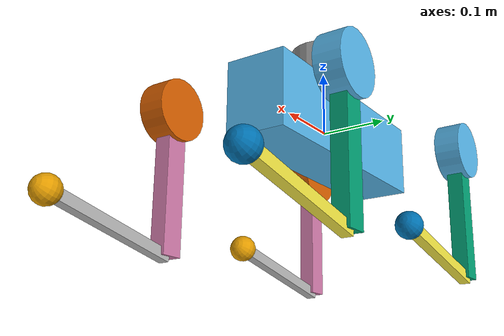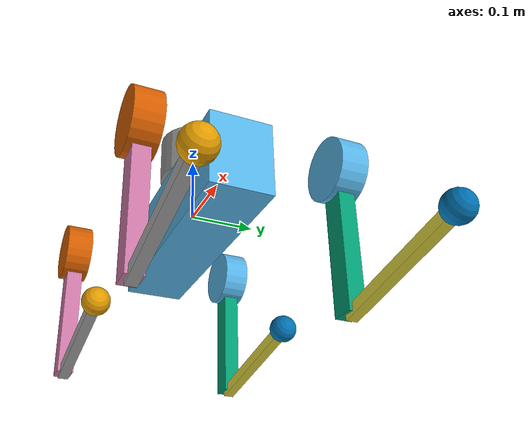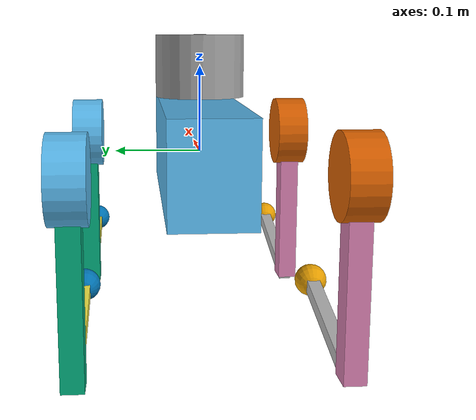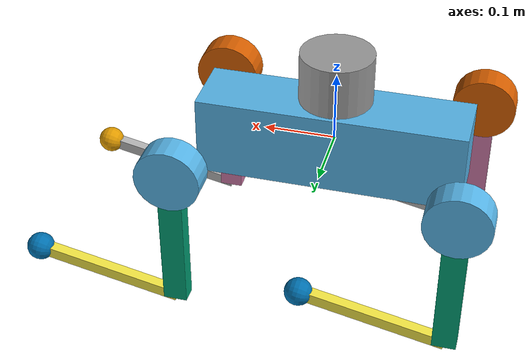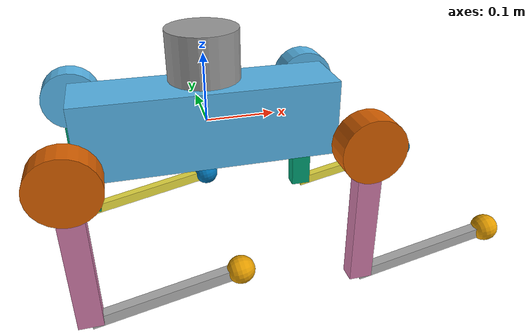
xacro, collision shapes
<?xml version="1.0"?>
<robot name="go2" xmlns:xacro="http://www.ros.org/wiki/xacro">

  <xacro:arg name="is_sim" default="true"/>
  <xacro:arg name="controller_config" default="/home/jo/clearpath_ws/go2/platform/config/control.yaml"/>

  <!-- Go2 description xacro files -->
  <xacro:include filename="$(find go2_description)/xacro/const.xacro"/>
  <xacro:include filename="$(find go2_description)/xacro/materials.xacro"/>

  <!-- Leg macro (inline, without transmission.xacro dependency) -->
  <xacro:macro name="go2_leg" params="name mirror mirror_dae front_hind front_hind_dae">

    <joint name="${name}_hip_joint" type="revolute">
      <xacro:if value="${(mirror_dae == False) and (front_hind_dae == True)}">
        <origin rpy="0 0 0" xyz="${leg_offset_x} ${-leg_offset_y} 0"/>
      </xacro:if>
      <xacro:if value="${(mirror_dae == True) and (front_hind_dae == True)}">
        <origin rpy="0 0 0" xyz="${leg_offset_x} ${leg_offset_y} 0"/>
      </xacro:if>
      <xacro:if value="${(mirror_dae == False) and (front_hind_dae == False)}">
        <origin rpy="0 0 0" xyz="${-leg_offset_x} ${-leg_offset_y} 0"/>
      </xacro:if>
      <xacro:if value="${(mirror_dae == True) and (front_hind_dae == False)}">
        <origin rpy="0 0 0" xyz="${-leg_offset_x} ${leg_offset_y} 0"/>
      </xacro:if>
      <parent link="trunk"/>
      <child link="${name}_hip"/>
      <axis xyz="1 0 0"/>
      <dynamics damping="${damping}" friction="${friction}"/>
      <xacro:if value="${(mirror_dae == True)}">
        <limit effort="${hip_torque_max}" velocity="${hip_velocity_max}" lower="${hip_position_min}" upper="${hip_position_max}"/>
      </xacro:if>
      <xacro:if value="${(mirror_dae == False)}">
        <limit effort="${hip_torque_max}" velocity="${hip_velocity_max}" lower="${-hip_position_max}" upper="${-hip_position_min}"/>
      </xacro:if>
    </joint>

    <link name="${name}_hip">
      <visual>
        <xacro:if value="${(mirror_dae == True) and (front_hind_dae == True)}">
          <origin rpy="0 0 0" xyz="0 0 0"/>
        </xacro:if>
        <xacro:if value="${(mirror_dae == False) and (front_hind_dae == True)}">
          <origin rpy="${PI} 0 0" xyz="0 0 0"/>
        </xacro:if>
        <xacro:if value="${(mirror_dae == True) and (front_hind_dae == False)}">
          <origin rpy="0 ${PI} 0" xyz="0 0 0"/>
        </xacro:if>
        <xacro:if value="${(mirror_dae == False) and (front_hind_dae == False)}">
          <origin rpy="${PI} ${PI} 0" xyz="0 0 0"/>
        </xacro:if>
        <geometry>
          <mesh filename="package://go2_description/meshes/hip.dae" scale="1 1 1"/>
        </geometry>
      </visual>
      <collision>
        <origin rpy="${PI/2.0} 0 0" xyz="0 ${hip_offset*mirror} 0"/>
        <geometry>
          <cylinder length="${hip_length}" radius="${hip_radius}"/>
        </geometry>
      </collision>
      <inertial>
        <origin rpy="0 0 0" xyz="${hip_com_x*front_hind} ${hip_com_y*mirror} ${hip_com_z}"/>
        <mass value="${hip_mass}"/>
        <inertia ixx="${hip_ixx}" ixy="${hip_ixy*mirror*front_hind}" ixz="${hip_ixz*front_hind}"
                 iyy="${hip_iyy}" iyz="${hip_iyz*mirror}" izz="${hip_izz}"/>
      </inertial>
    </link>

    <joint name="${name}_thigh_joint" type="revolute">
      <origin rpy="0 0 0" xyz="0 ${thigh_offset*mirror} 0"/>
      <parent link="${name}_hip"/>
      <child link="${name}_thigh"/>
      <axis xyz="0 1 0"/>
      <dynamics damping="${damping}" friction="${friction}"/>
      <limit effort="${thigh_torque_max}" velocity="${thigh_velocity_max}" lower="${thigh_position_min}" upper="${thigh_position_max}"/>
    </joint>

    <link name="${name}_thigh">
      <visual>
        <origin rpy="0 0 0" xyz="0 0 0"/>
        <geometry>
          <xacro:if value="${mirror_dae == True}">
            <mesh filename="package://go2_description/meshes/thigh.dae" scale="1 1 1"/>
          </xacro:if>
          <xacro:if value="${mirror_dae == False}">
            <mesh filename="package://go2_description/meshes/thigh_mirror.dae" scale="1 1 1"/>
          </xacro:if>
        </geometry>
      </visual>
      <collision>
        <origin rpy="0 ${PI/2.0} 0" xyz="0 0 ${-thigh_length/2.0}"/>
        <geometry>
          <box size="${thigh_length} ${thigh_width} ${thigh_height}"/>
        </geometry>
      </collision>
      <inertial>
        <origin rpy="0 0 0" xyz="${thigh_com_x} ${thigh_com_y*mirror} ${thigh_com_z}"/>
        <mass value="${thigh_mass}"/>
        <inertia ixx="${thigh_ixx}" ixy="${thigh_ixy*mirror}" ixz="${thigh_ixz}"
                 iyy="${thigh_iyy}" iyz="${thigh_iyz*mirror}" izz="${thigh_izz}"/>
      </inertial>
    </link>

    <joint name="${name}_calf_joint" type="revolute">
      <origin rpy="0 0 0" xyz="0 0 ${-thigh_length}"/>
      <parent link="${name}_thigh"/>
      <child link="${name}_calf"/>
      <axis xyz="0 1 0"/>
      <dynamics damping="${damping}" friction="${friction}"/>
      <limit effort="${calf_torque_max}" velocity="${calf_velocity_max}" lower="${calf_position_min}" upper="${calf_position_max}"/>
    </joint>

    <link name="${name}_calf">
      <visual>
        <origin rpy="0 0 0" xyz="0 0 0"/>
        <geometry>
          <mesh filename="package://go2_description/meshes/calf.dae" scale="1 1 1"/>
        </geometry>
      </visual>
      <collision>
        <origin rpy="0 ${PI/2.0} 0" xyz="0 0 ${-calf_length/2.0}"/>
        <geometry>
          <box size="${calf_length} ${calf_width} ${calf_height}"/>
        </geometry>
      </collision>
      <inertial>
        <origin rpy="0 0 0" xyz="${calf_com_x} ${calf_com_y} ${calf_com_z}"/>
        <mass value="${calf_mass}"/>
        <inertia ixx="${calf_ixx}" ixy="${calf_ixy}" ixz="${calf_ixz}"
                 iyy="${calf_iyy}" iyz="${calf_iyz}" izz="${calf_izz}"/>
      </inertial>
    </link>

    <joint name="${name}_foot_fixed" type="fixed">
      <origin rpy="0 0 0" xyz="0 0 ${-(calf_length)}"/>
      <parent link="${name}_calf"/>
      <child link="${name}_foot"/>
    </joint>

    <link name="${name}_foot">
      <visual>
        <origin rpy="0 0 0" xyz="0 0 0"/>
        <geometry>
          <sphere radius="${foot_radius-0.01}"/>
        </geometry>
      </visual>
      <collision>
        <origin rpy="0 0 0" xyz="0 0 0"/>
        <geometry>
          <sphere radius="${foot_radius}"/>
        </geometry>
      </collision>
      <inertial>
        <mass value="${foot_mass}"/>
        <inertia ixx="${(2*foot_mass)/5.0*(foot_radius*foot_radius)}" ixy="0.0" ixz="0.0"
                 iyy="${(2*foot_mass)/5.0*(foot_radius*foot_radius)}" iyz="0.0"
                 izz="${(2*foot_mass)/5.0*(foot_radius*foot_radius)}"/>
      </inertial>
    </link>
  </xacro:macro>

  <!-- Robot body -->

  <link name="base_link">
    <visual>
      <origin rpy="0 0 0" xyz="0 0 0"/>
      <geometry>
        <box size="0.001 0.001 0.001"/>
      </geometry>
    </visual>
  </link>

  <joint name="floating_base" type="fixed">
    <origin rpy="0 0 0" xyz="0 0 0"/>
    <parent link="base_link"/>
    <child link="trunk"/>
  </joint>

  <link name="trunk">
    <visual>
      <origin rpy="0 0 0" xyz="0 0 0"/>
      <geometry>
        <mesh filename="package://go2_description/meshes/base.dae" scale="1 1 1"/>
      </geometry>
    </visual>
    <collision>
      <origin rpy="0 0 0" xyz="0 0 0"/>
      <geometry>
        <box size="${trunk_length} ${trunk_width} ${trunk_height}"/>
      </geometry>
    </collision>
    <inertial>
      <origin rpy="0 0 0" xyz="${trunk_com_x} ${trunk_com_y} ${trunk_com_z}"/>
      <mass value="${trunk_mass}"/>
      <inertia ixx="${trunk_ixx}" ixy="${trunk_ixy}" ixz="${trunk_ixz}"
               iyy="${trunk_iyy}" iyz="${trunk_iyz}" izz="${trunk_izz}"/>
    </inertial>
  </link>

  <!-- IMU -->
  <joint name="imu_joint" type="fixed">
    <parent link="trunk"/>
    <child link="imu_link"/>
    <origin rpy="0 0 0" xyz="0 0 0"/>
  </joint>

  <link name="imu_link">
    <inertial>
      <mass value="0.001"/>
      <origin rpy="0 0 0" xyz="0 0 0"/>
      <inertia ixx="0.0001" ixy="0" ixz="0" iyy="0.0001" iyz="0" izz="0.0001"/>
    </inertial>
  </link>

  <!-- VLP-16 LiDAR mount on top of trunk -->
  <joint name="lidar3d_0_joint" type="fixed">
    <parent link="trunk"/>
    <child link="lidar3d_0_link"/>
    <origin rpy="0 0 0" xyz="0.0 0.0 0.10"/>
  </joint>

  <link name="lidar3d_0_link">
    <visual>
      <origin rpy="0 0 0" xyz="0 0 0"/>
      <geometry>
        <cylinder length="0.0717" radius="0.0516"/>
      </geometry>
      <material name="grey"/>
    </visual>
    <collision>
      <origin rpy="0 0 0" xyz="0 0 0"/>
      <geometry>
        <cylinder length="0.0717" radius="0.0516"/>
      </geometry>
    </collision>
    <inertial>
      <mass value="0.83"/>
      <origin rpy="0 0 0" xyz="0 0 0"/>
      <inertia ixx="0.000908" ixy="0" ixz="0" iyy="0.000908" iyz="0" izz="0.001104"/>
    </inertial>
  </link>

  <joint name="lidar3d_0_laser_joint" type="fixed">
    <parent link="lidar3d_0_link"/>
    <child link="lidar3d_0_laser"/>
    <origin rpy="0 0 0" xyz="0 0 0.03585"/>
  </joint>

  <link name="lidar3d_0_laser"/>

  <!-- Legs -->
  <xacro:go2_leg name="FR" mirror="-1" mirror_dae="False" front_hind="1"  front_hind_dae="True"  />
  <xacro:go2_leg name="FL" mirror="1"  mirror_dae="True"  front_hind="1"  front_hind_dae="True"  />
  <xacro:go2_leg name="RR" mirror="-1" mirror_dae="False" front_hind="-1" front_hind_dae="False" />
  <xacro:go2_leg name="RL" mirror="1"  mirror_dae="True"  front_hind="-1" front_hind_dae="False" />

  <!-- Ignition Gazebo plugins and ros2_control -->

  <!-- ros2_control hardware interface -->
  <ros2_control name="IgnitionSystem" type="system">
    <hardware>
      <plugin>ign_ros2_control/IgnitionSystem</plugin>
    </hardware>
    <xacro:macro name="joint_interface" params="joint_name initial_pos:=0.0">
      <joint name="${joint_name}">
        <command_interface name="effort"/>
        <state_interface name="position">
          <param name="initial_value">${initial_pos}</param>
        </state_interface>
        <state_interface name="velocity"/>
        <state_interface name="effort"/>
      </joint>
    </xacro:macro>
    <!-- Standing pose: FR/FL hip=±0.1, thigh=0.8, calf=-1.5; RR/RL hip=±0.1, thigh=1.0, calf=-1.5 -->
    <xacro:joint_interface joint_name="FR_hip_joint"   initial_pos="-0.1"/>
    <xacro:joint_interface joint_name="FR_thigh_joint" initial_pos="0.8"/>
    <xacro:joint_interface joint_name="FR_calf_joint"  initial_pos="-1.5"/>
    <xacro:joint_interface joint_name="FL_hip_joint"   initial_pos="0.1"/>
    <xacro:joint_interface joint_name="FL_thigh_joint" initial_pos="0.8"/>
    <xacro:joint_interface joint_name="FL_calf_joint"  initial_pos="-1.5"/>
    <xacro:joint_interface joint_name="RR_hip_joint"   initial_pos="-0.1"/>
    <xacro:joint_interface joint_name="RR_thigh_joint" initial_pos="1.0"/>
    <xacro:joint_interface joint_name="RR_calf_joint"  initial_pos="-1.5"/>
    <xacro:joint_interface joint_name="RL_hip_joint"   initial_pos="0.1"/>
    <xacro:joint_interface joint_name="RL_thigh_joint" initial_pos="1.0"/>
    <xacro:joint_interface joint_name="RL_calf_joint"  initial_pos="-1.5"/>
  </ros2_control>

  <!-- Ignition ros2_control plugin -->
  <gazebo>
    <plugin filename="libign_ros2_control-system.so"
            name="ign_ros2_control::IgnitionROS2ControlPlugin">
      <parameters>$(arg controller_config)</parameters>
      <robot_param_node>go2_0000/robot_state_publisher</robot_param_node>
    </plugin>
  </gazebo>

  <!-- Ground truth odometry (same as Husky) -->
  <xacro:if value="$(arg is_sim)">
    <gazebo>
      <plugin filename="libignition-gazebo-odometry-publisher-system.so"
              name="ignition::gazebo::systems::OdometryPublisher">
        <odom_frame>odom</odom_frame>
        <robot_base_frame>base_link</robot_base_frame>
        <update_frequency>50</update_frequency>
        <publish_covariance>true</publish_covariance>
        <dimensions>3</dimensions>
      </plugin>
    </gazebo>
  </xacro:if>

  <!-- VLP-16 LiDAR sensor (Ignition gpu_lidar) -->
  <gazebo reference="lidar3d_0_laser">
    <sensor name="lidar3d_0" type="gpu_lidar">
      <ignition_frame_id>lidar3d_0_laser</ignition_frame_id>
      <topic>go2_0000/sensors/lidar3d_0/scan</topic>
      <update_rate>10</update_rate>
      <always_on>true</always_on>
      <visualize>false</visualize>
      <lidar>
        <scan>
          <horizontal>
            <samples>440</samples>
            <resolution>1</resolution>
            <min_angle>-3.14159265</min_angle>
            <max_angle>3.14159265</max_angle>
          </horizontal>
          <vertical>
            <samples>16</samples>
            <resolution>1</resolution>
            <min_angle>-0.261799</min_angle>
            <max_angle>0.261799</max_angle>
          </vertical>
        </scan>
        <range>
          <min>0.3</min>
          <max>100.0</max>
          <resolution>0.01</resolution>
        </range>
      </lidar>
    </sensor>
  </gazebo>

  <!-- IMU sensor (Ignition) -->
  <gazebo reference="imu_link">
    <sensor name="imu_sensor" type="imu">
      <topic>go2_0000/imu/data</topic>
      <update_rate>100</update_rate>
      <always_on>true</always_on>
    </sensor>
  </gazebo>

  <!-- Friction properties -->
  <gazebo reference="trunk">
    <mu1>0.2</mu1>
    <mu2>0.2</mu2>
  </gazebo>
  <gazebo reference="FR_foot"><mu1>0.6</mu1><mu2>0.6</mu2></gazebo>
  <gazebo reference="FL_foot"><mu1>0.6</mu1><mu2>0.6</mu2></gazebo>
  <gazebo reference="RR_foot"><mu1>0.6</mu1><mu2>0.6</mu2></gazebo>
  <gazebo reference="RL_foot"><mu1>0.6</mu1><mu2>0.6</mu2></gazebo>

</robot>

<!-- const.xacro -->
<robot xmlns:xacro="http://www.ros.org/wiki/xacro">

    <!-- Constants for robot dimensions -->
    <xacro:property name="PI" value="3.1415926535897931"/>
    <xacro:property name="stick_mass" value="0.00001"/>

    <!-- simplified collision value -->
    <xacro:property name="trunk_width" value="0.0935"/>
    <xacro:property name="trunk_length" value="0.3762"/>
    <xacro:property name="trunk_height" value="0.114"/>
    <xacro:property name="hip_radius" value="0.046"/>
    <xacro:property name="hip_length" value="0.04"/>
    <xacro:property name="thigh_shoulder_radius" value="0.041"/>
    <xacro:property name="thigh_shoulder_length" value="0.032"/>
    <xacro:property name="thigh_width" value="0.0245"/>
    <xacro:property name="thigh_height" value="0.034"/>
    <xacro:property name="calf_width" value="0.016"/>
    <xacro:property name="calf_height" value="0.016"/>
    <xacro:property name="foot_radius" value="0.02"/>
    <xacro:property name="stick_radius" value="0.01"/>
    <xacro:property name="stick_length" value="0.2"/>

    <!-- kinematic value -->
    <xacro:property name="thigh_offset" value="0.0955"/>
    <xacro:property name="thigh_length" value="0.213"/>
    <xacro:property name="calf_length" value="0.213"/>

    <!-- leg offset from trunk center value -->
    <xacro:property name="leg_offset_x" value="0.1934"/>
    <xacro:property name="leg_offset_y" value="0.0465"/>
    <xacro:property name="hip_offset" value="0.0955"/>

    <!-- offset of link locations (left front) -->
    <xacro:property name="hip_offset_x" value="0.1934"/>
    <xacro:property name="hip_offset_y" value="0.0465"/>
    <xacro:property name="hip_offset_z" value="0.0"/>
    <xacro:property name="hip_rotor_offset_x" value="0.11215"/>
    <xacro:property name="hip_rotor_offset_y" value="0.04675"/>
    <xacro:property name="hip_rotor_offset_z" value="0.0"/>

    <xacro:property name="thigh_offset_x" value="0"/>
    <xacro:property name="thigh_offset_y" value="0.0955"/>
    <xacro:property name="thigh_offset_z" value="0.0"/>
    <xacro:property name="thigh_rotor_offset_x" value="0.0"/>
    <xacro:property name="thigh_rotor_offset_y" value="-0.00015"/>
    <xacro:property name="thigh_rotor_offset_z" value="0.0"/>

    <xacro:property name="calf_offset_x" value="0.0"/>
    <xacro:property name="calf_offset_y" value="0.0"/>
    <xacro:property name="calf_offset_z" value="-0.213"/>
    <xacro:property name="calf_rotor_offset_x" value="0.0"/>
    <xacro:property name="calf_rotor_offset_y" value="-0.03235"/>
    <xacro:property name="calf_rotor_offset_z" value="0.0"/>

    <!-- joint limits -->
    <xacro:property name="damping" value="0.01"/>
    <xacro:property name="friction" value="0.2"/>
    <xacro:property name="hip_position_max" value="1.0472"/>
    <xacro:property name="hip_position_min" value="-1.0472"/>
    <xacro:property name="hip_velocity_max" value="30.1"/>
    <xacro:property name="hip_torque_max" value="23.7"/>
    <xacro:property name="thigh_position_max" value="3.4907"/>
    <xacro:property name="thigh_position_min" value="-1.5708"/>
    <xacro:property name="thigh_velocity_max" value="30.1"/>
    <xacro:property name="thigh_torque_max" value="23.7"/>
    <xacro:property name="calf_position_max" value="-0.83776"/>
    <xacro:property name="calf_position_min" value="-2.7227"/>
    <xacro:property name="calf_velocity_max" value="20.06"/>
    <xacro:property name="calf_torque_max" value="35.55"/>

    <!-- dynamics inertial value -->
    <!-- trunk -->
    <xacro:property name="trunk_mass" value="6.921"/>
    <xacro:property name="trunk_com_x" value="0.021112"/>
    <xacro:property name="trunk_com_y" value="0.00"/>
    <xacro:property name="trunk_com_z" value="-0.005366"/>
    <xacro:property name="trunk_ixx" value="0.02448"/>
    <xacro:property name="trunk_ixy" value="0.00012166"/>
    <xacro:property name="trunk_ixz" value="0.0014849"/>
    <xacro:property name="trunk_iyy" value="0.098077"/>
    <xacro:property name="trunk_iyz" value="-3.12E-05"/>
    <xacro:property name="trunk_izz" value="0.107"/>

    <!-- hip (left front) -->
    <xacro:property name="hip_mass" value="0.678"/>
    <xacro:property name="hip_com_x" value="-0.0054"/>
    <xacro:property name="hip_com_y" value="0.00194"/>
    <xacro:property name="hip_com_z" value="-0.000105"/>
    <xacro:property name="hip_ixx" value="0.00048"/>
    <xacro:property name="hip_ixy" value="-3.01E-06"/>
    <xacro:property name="hip_ixz" value="1.11E-06"/>
    <xacro:property name="hip_iyy" value="0.000884"/>
    <xacro:property name="hip_iyz" value="-1.42E-06"/>
    <xacro:property name="hip_izz" value="0.000596"/>

    <xacro:property name="hip_rotor_mass" value="0.089"/>
    <xacro:property name="hip_rotor_com_x" value="0.0"/>
    <xacro:property name="hip_rotor_com_y" value="0.0"/>
    <xacro:property name="hip_rotor_com_z" value="0.0"/>
    <xacro:property name="hip_rotor_ixx" value="0.000111842"/>
    <xacro:property name="hip_rotor_ixy" value="0.0"/>
    <xacro:property name="hip_rotor_ixz" value="0.0"/>
    <xacro:property name="hip_rotor_iyy" value="0.000059647"/>
    <xacro:property name="hip_rotor_iyz" value="0.0"/>
    <xacro:property name="hip_rotor_izz" value="0.000059647"/>

    <!-- thigh -->
    <xacro:property name="thigh_mass" value="1.152"/>
    <xacro:property name="thigh_com_x" value="-0.00374"/>
    <xacro:property name="thigh_com_y" value="-0.0223"/>
    <xacro:property name="thigh_com_z" value="-0.0327"/>
    <xacro:property name="thigh_ixx" value="0.00584"/>
    <xacro:property name="thigh_ixy" value="8.72E-05"/>
    <xacro:property name="thigh_ixz" value="-0.000289"/>
    <xacro:property name="thigh_iyy" value="0.0058"/>
    <xacro:property name="thigh_iyz" value="0.000808"/>
    <xacro:property name="thigh_izz" value="0.00103"/>

    <xacro:property name="thigh_rotor_mass" value="0.089"/>
    <xacro:property name="thigh_rotor_com_x" value="0.0"/>
    <xacro:property name="thigh_rotor_com_y" value="0.0"/>
    <xacro:property name="thigh_rotor_com_z" value="0.0"/>
    <xacro:property name="thigh_rotor_ixx" value="0.000059647"/>
    <xacro:property name="thigh_rotor_ixy" value="0.0"/>
    <xacro:property name="thigh_rotor_ixz" value="0.0"/>
    <xacro:property name="thigh_rotor_iyy" value="0.000111842"/>
    <xacro:property name="thigh_rotor_iyz" value="0.0"/>
    <xacro:property name="thigh_rotor_izz" value="0.000059647"/>

    <!-- calf -->
    <xacro:property name="calf_mass" value="0.154"/>
    <xacro:property name="calf_com_x" value="0.00548"/>
    <xacro:property name="calf_com_y" value="-0.000975"/>
    <xacro:property name="calf_com_z" value="-0.115"/>
    <xacro:property name="calf_ixx" value="0.00108"/>
    <xacro:property name="calf_ixy" value="3.4E-07"/>
    <xacro:property name="calf_ixz" value="1.72E-05"/>
    <xacro:property name="calf_iyy" value="0.0011"/>
    <xacro:property name="calf_iyz" value="8.28E-06"/>
    <xacro:property name="calf_izz" value="3.29E-05"/>

    <xacro:property name="calf_rotor_mass" value="0.089"/>
    <xacro:property name="calf_rotor_com_x" value="0.0"/>
    <xacro:property name="calf_rotor_com_y" value="0.0"/>
    <xacro:property name="calf_rotor_com_z" value="0.0"/>
    <xacro:property name="calf_rotor_ixx" value="0.000059647"/>
    <xacro:property name="calf_rotor_ixy" value="0.0"/>
    <xacro:property name="calf_rotor_ixz" value="0.0"/>
    <xacro:property name="calf_rotor_iyy" value="0.000111842"/>
    <xacro:property name="calf_rotor_iyz" value="0.0"/>
    <xacro:property name="calf_rotor_izz" value="0.000059647"/>

    <!-- foot -->
    <xacro:property name="foot_mass" value="0.06"/>

</robot>
